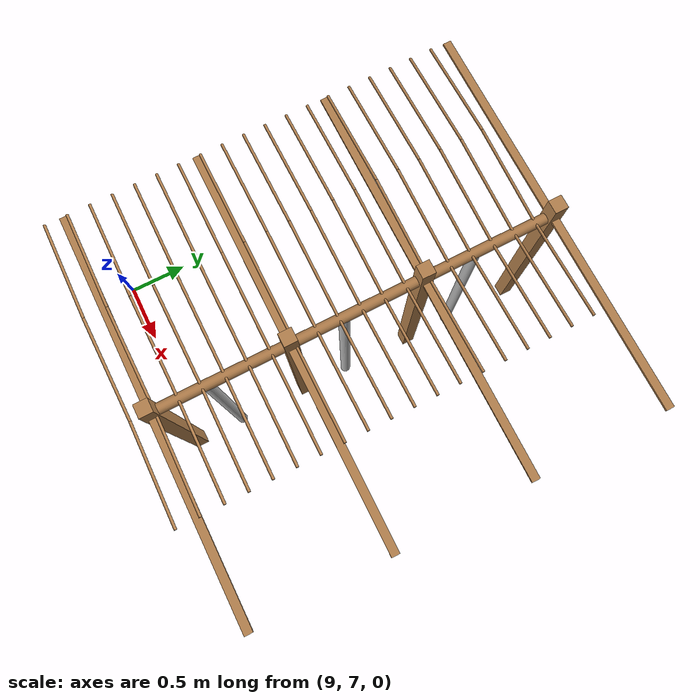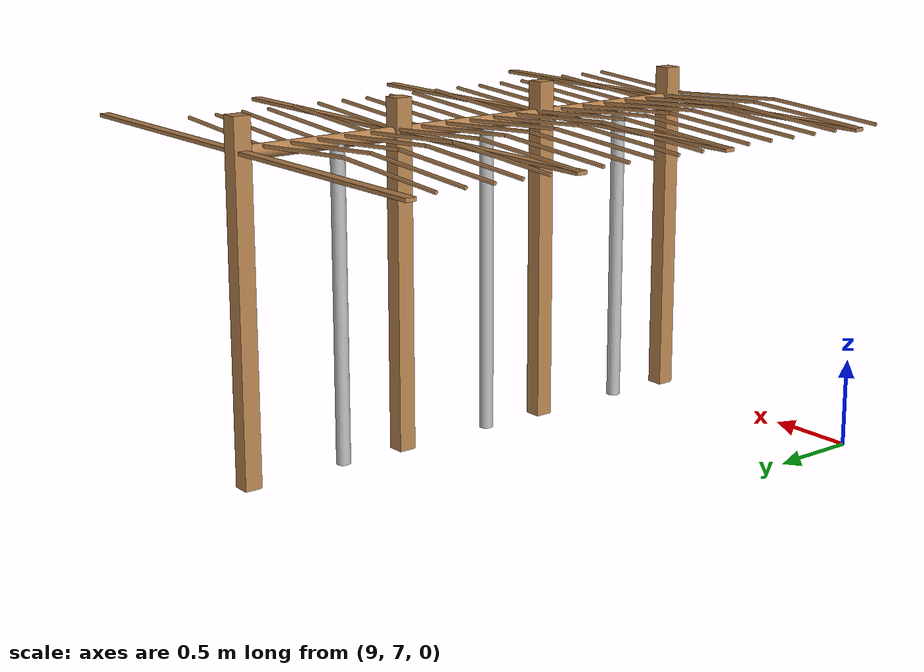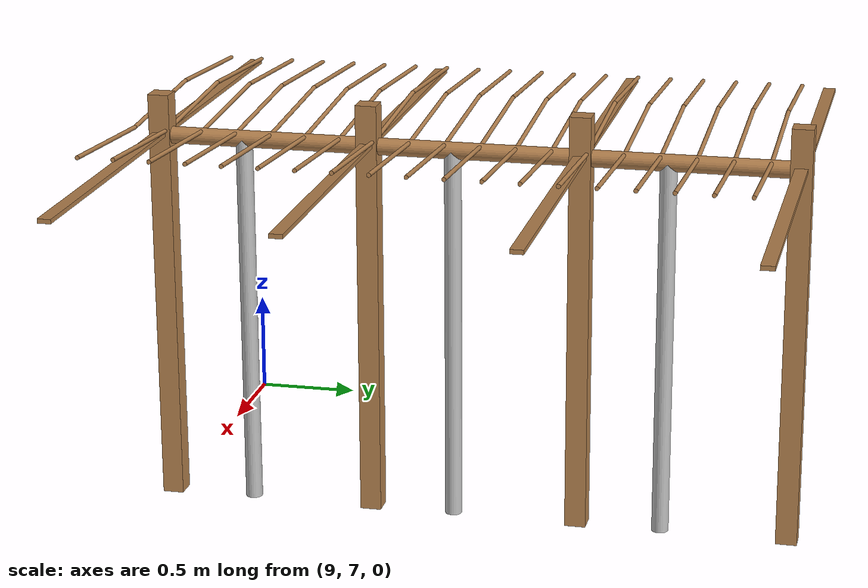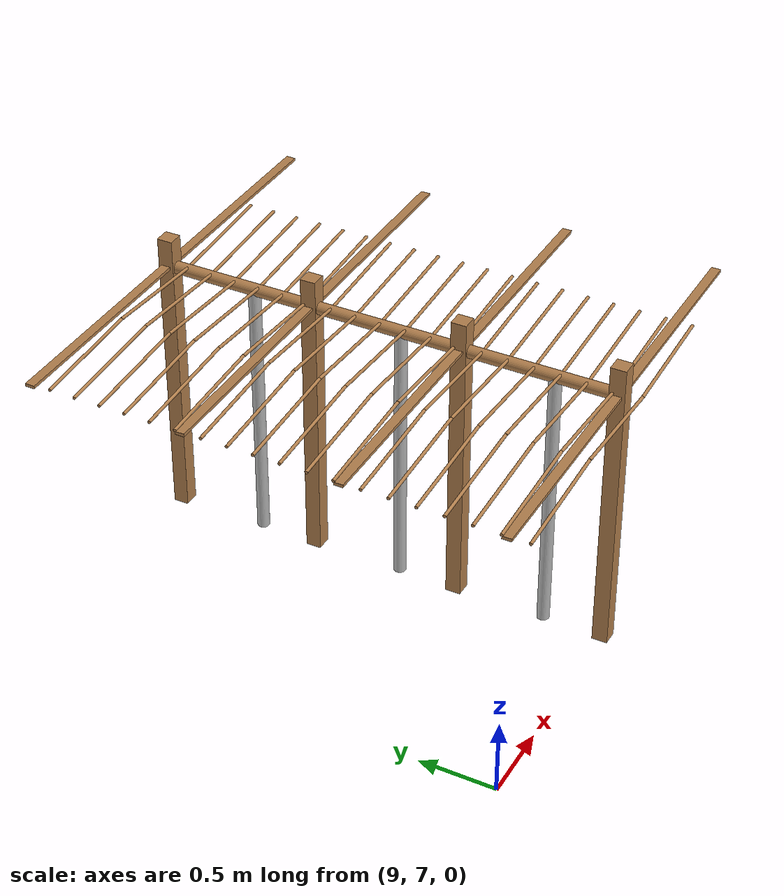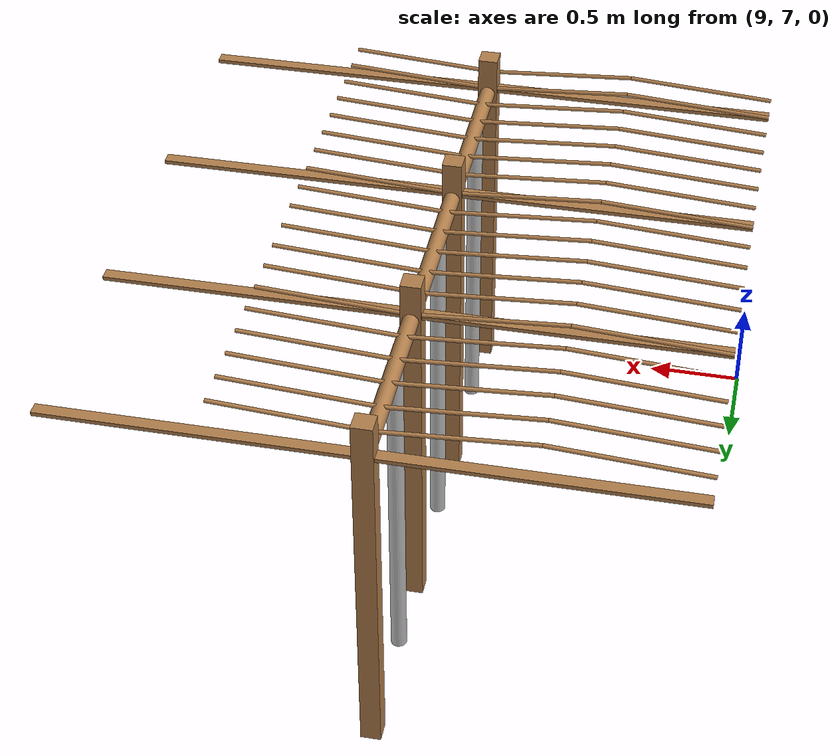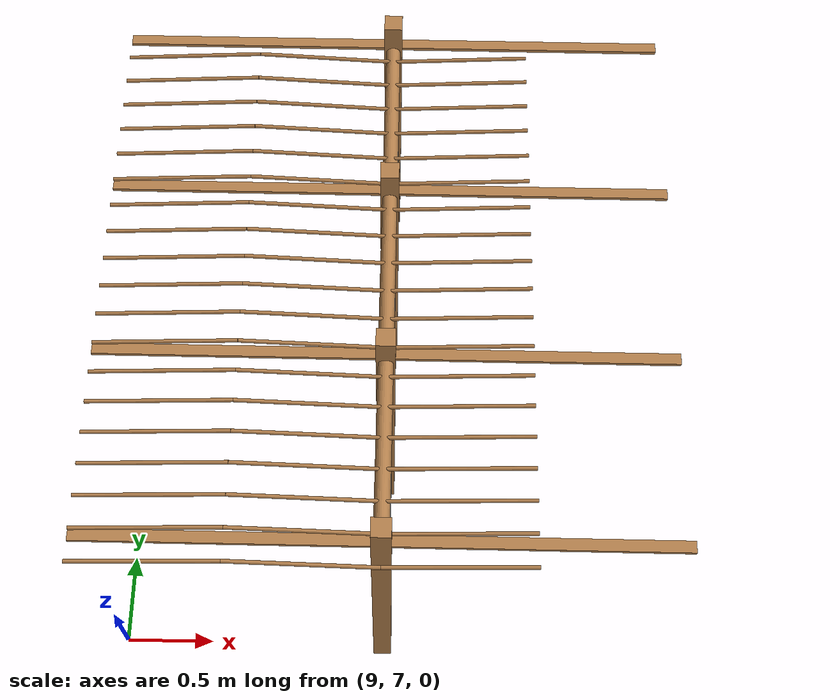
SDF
<sdf version="1.4">
 <model name="pergola">
  <include><name>post_84</name><pose>10.5 7.0 0 0 0 0</pose><uri>model://post</uri></include>
  <include><name>post_85</name><pose>10.5 8.0 0 0 0 0</pose><uri>model://post</uri></include>
  <include><name>post_86</name><pose>10.5 9.0 0 0 0 0</pose><uri>model://post</uri></include>
  <include><name>post_87</name><pose>10.5 10.0 0 0 0 0</pose><uri>model://post</uri></include>
  <link name="beam_73">
   <pose>9.75 7.0 1.81 0 0 0</pose>
   <collision name="collision"><geometry><box><size>1.5 0.06 0.02</size></box></geometry></collision>
   <visual name="visual">
    <geometry><box><size>1.5 0.06 0.02</size></box></geometry>
    <material><script><name>Gazebo/Wood</name></script></material>
   </visual>
   <inertial>
    <mass>5</mass>
    <inertia>
     <ixx>0.0016666666666666668</ixx>
     <ixy>0.0</ixy>
     <ixz>0.0</ixz>
     <iyy>0.9390000000000001</iyy>
     <iyz>0.0</iyz>
     <izz>0.9376666666666665</izz>
    </inertia>
   </inertial>
  </link>
  <link name="beam_74">
   <pose>9.75 8.0 1.81 0 0 0</pose>
   <collision name="collision"><geometry><box><size>1.5 0.06 0.02</size></box></geometry></collision>
   <visual name="visual">
    <geometry><box><size>1.5 0.06 0.02</size></box></geometry>
    <material><script><name>Gazebo/Wood</name></script></material>
   </visual>
   <inertial>
    <mass>5</mass>
    <inertia>
     <ixx>0.0016666666666666668</ixx>
     <ixy>0.0</ixy>
     <ixz>0.0</ixz>
     <iyy>0.9390000000000001</iyy>
     <iyz>0.0</iyz>
     <izz>0.9376666666666665</izz>
    </inertia>
   </inertial>
  </link>
  <link name="beam_75">
   <pose>9.75 9.0 1.81 0 0 0</pose>
   <collision name="collision"><geometry><box><size>1.5 0.06 0.02</size></box></geometry></collision>
   <visual name="visual">
    <geometry><box><size>1.5 0.06 0.02</size></box></geometry>
    <material><script><name>Gazebo/Wood</name></script></material>
   </visual>
   <inertial>
    <mass>5</mass>
    <inertia>
     <ixx>0.0016666666666666668</ixx>
     <ixy>0.0</ixy>
     <ixz>0.0</ixz>
     <iyy>0.9390000000000001</iyy>
     <iyz>0.0</iyz>
     <izz>0.9376666666666665</izz>
    </inertia>
   </inertial>
  </link>
  <link name="beam_76">
   <pose>9.75 10.0 1.81 0 0 0</pose>
   <collision name="collision"><geometry><box><size>1.5 0.06 0.02</size></box></geometry></collision>
   <visual name="visual">
    <geometry><box><size>1.5 0.06 0.02</size></box></geometry>
    <material><script><name>Gazebo/Wood</name></script></material>
   </visual>
   <inertial>
    <mass>5</mass>
    <inertia>
     <ixx>0.0016666666666666668</ixx>
     <ixy>0.0</ixy>
     <ixz>0.0</ixz>
     <iyy>0.9390000000000001</iyy>
     <iyz>0.0</iyz>
     <izz>0.9376666666666665</izz>
    </inertia>
   </inertial>
  </link>
  <link name="beam_84">
   <pose>11.25 7.0 1.81 0 0 0</pose>
   <collision name="collision"><geometry><box><size>1.5 0.06 0.02</size></box></geometry></collision>
   <visual name="visual">
    <geometry><box><size>1.5 0.06 0.02</size></box></geometry>
    <material><script><name>Gazebo/Wood</name></script></material>
   </visual>
   <inertial>
    <mass>5</mass>
    <inertia>
     <ixx>0.0016666666666666668</ixx>
     <ixy>0.0</ixy>
     <ixz>0.0</ixz>
     <iyy>0.9390000000000001</iyy>
     <iyz>0.0</iyz>
     <izz>0.9376666666666665</izz>
    </inertia>
   </inertial>
  </link>
  <link name="beam_85">
   <pose>11.25 8.0 1.81 0 0 0</pose>
   <collision name="collision"><geometry><box><size>1.5 0.06 0.02</size></box></geometry></collision>
   <visual name="visual">
    <geometry><box><size>1.5 0.06 0.02</size></box></geometry>
    <material><script><name>Gazebo/Wood</name></script></material>
   </visual>
   <inertial>
    <mass>5</mass>
    <inertia>
     <ixx>0.0016666666666666668</ixx>
     <ixy>0.0</ixy>
     <ixz>0.0</ixz>
     <iyy>0.9390000000000001</iyy>
     <iyz>0.0</iyz>
     <izz>0.9376666666666665</izz>
    </inertia>
   </inertial>
  </link>
  <link name="beam_86">
   <pose>11.25 9.0 1.81 0 0 0</pose>
   <collision name="collision"><geometry><box><size>1.5 0.06 0.02</size></box></geometry></collision>
   <visual name="visual">
    <geometry><box><size>1.5 0.06 0.02</size></box></geometry>
    <material><script><name>Gazebo/Wood</name></script></material>
   </visual>
   <inertial>
    <mass>5</mass>
    <inertia>
     <ixx>0.0016666666666666668</ixx>
     <ixy>0.0</ixy>
     <ixz>0.0</ixz>
     <iyy>0.9390000000000001</iyy>
     <iyz>0.0</iyz>
     <izz>0.9376666666666665</izz>
    </inertia>
   </inertial>
  </link>
  <link name="beam_87">
   <pose>11.25 10.0 1.81 0 0 0</pose>
   <collision name="collision"><geometry><box><size>1.5 0.06 0.02</size></box></geometry></collision>
   <visual name="visual">
    <geometry><box><size>1.5 0.06 0.02</size></box></geometry>
    <material><script><name>Gazebo/Wood</name></script></material>
   </visual>
   <inertial>
    <mass>5</mass>
    <inertia>
     <ixx>0.0016666666666666668</ixx>
     <ixy>0.0</ixy>
     <ixz>0.0</ixz>
     <iyy>0.9390000000000001</iyy>
     <iyz>0.0</iyz>
     <izz>0.9376666666666665</izz>
    </inertia>
   </inertial>
  </link>
  <include><name>tree_77</name><pose>10.5 7.4 0 0 0 0</pose><uri>model://tree_trunk</uri></include>
  <include><name>tree_78</name><pose>10.5 8.4 0 0 0 0</pose><uri>model://tree_trunk</uri></include>
  <include><name>tree_79</name><pose>10.5 9.4 0 0 0 0</pose><uri>model://tree_trunk</uri></include>
  <link name="baseBranch_77">
   <pose>10.5 7.5 1.8 1.5707963267948966 0 0</pose>
   <collision name="collision">
    <geometry><cylinder><radius>0.04</radius><length>0.94</length></cylinder></geometry>
   </collision>
   <visual name="visual">
    <geometry><cylinder><radius>0.04</radius><length>0.94</length></cylinder></geometry>
    <material><script><name>Gazebo/WoodFloor</name></script></material>
   </visual>
   <inertial>
    <mass>10</mass>
    <inertia>
     <ixx>0.7403333333333334</ixx>
     <ixy>0.0</ixy>
     <ixz>0.0</ixz>
     <iyy>0.7403333333333334</iyy>
     <iyz>0.0</iyz>
     <izz>0.008</izz>
    </inertia>
   </inertial>
  </link>
  <link name="baseBranch_78">
   <pose>10.5 8.5 1.8 1.5707963267948966 0 0</pose>
   <collision name="collision">
    <geometry><cylinder><radius>0.04</radius><length>0.94</length></cylinder></geometry>
   </collision>
   <visual name="visual">
    <geometry><cylinder><radius>0.04</radius><length>0.94</length></cylinder></geometry>
    <material><script><name>Gazebo/WoodFloor</name></script></material>
   </visual>
   <inertial>
    <mass>10</mass>
    <inertia>
     <ixx>0.7403333333333334</ixx>
     <ixy>0.0</ixy>
     <ixz>0.0</ixz>
     <iyy>0.7403333333333334</iyy>
     <iyz>0.0</iyz>
     <izz>0.008</izz>
    </inertia>
   </inertial>
  </link>
  <link name="baseBranch_79">
   <pose>10.5 9.5 1.8 1.5707963267948966 0 0</pose>
   <collision name="collision">
    <geometry><cylinder><radius>0.04</radius><length>0.94</length></cylinder></geometry>
   </collision>
   <visual name="visual">
    <geometry><cylinder><radius>0.04</radius><length>0.94</length></cylinder></geometry>
    <material><script><name>Gazebo/WoodFloor</name></script></material>
   </visual>
   <inertial>
    <mass>10</mass>
    <inertia>
     <ixx>0.7403333333333334</ixx>
     <ixy>0.0</ixy>
     <ixz>0.0</ixz>
     <iyy>0.7403333333333334</iyy>
     <iyz>0.0</iyz>
     <izz>0.008</izz>
    </inertia>
   </inertial>
  </link>
  <link name="vine_802">
   <pose>9.375 6.863333333333333 1.85 0 1.5042281630190728 0</pose>
   <collision name="collision">
    <geometry><cylinder><radius>0.01</radius><length>0.7516648189186453</length></cylinder></geometry>
   </collision>
   <visual name="visual">
    <geometry><cylinder><radius>0.01</radius><length>0.7516648189186453</length></cylinder></geometry>
    <material><script><name>Gazebo/WoodFloor</name></script></material>
   </visual>
   <inertial>
    <mass>5</mass>
    <inertia>
     <ixx>0.23554166666666657</ixx>
     <ixy>0.0</ixy>
     <ixz>0.0</ixz>
     <iyy>0.23554166666666657</iyy>
     <iyz>0.0</iyz>
     <izz>0.00025</izz>
    </inertia>
   </inertial>
  </link>
  <link name="vine_803">
   <pose>10.125 6.863333333333333 1.85 0 -1.5042281630190728 0</pose>
   <collision name="collision">
    <geometry><cylinder><radius>0.01</radius><length>0.7516648189186453</length></cylinder></geometry>
   </collision>
   <visual name="visual">
    <geometry><cylinder><radius>0.01</radius><length>0.7516648189186453</length></cylinder></geometry>
    <material><script><name>Gazebo/WoodFloor</name></script></material>
   </visual>
   <inertial>
    <mass>5</mass>
    <inertia>
     <ixx>0.23554166666666657</ixx>
     <ixy>0.0</ixy>
     <ixz>0.0</ixz>
     <iyy>0.23554166666666657</iyy>
     <iyz>0.0</iyz>
     <izz>0.00025</izz>
    </inertia>
   </inertial>
  </link>
  <link name="vine_804">
   <pose>9.375 7.03 1.85 0 1.5042281630190728 0</pose>
   <collision name="collision">
    <geometry><cylinder><radius>0.01</radius><length>0.7516648189186453</length></cylinder></geometry>
   </collision>
   <visual name="visual">
    <geometry><cylinder><radius>0.01</radius><length>0.7516648189186453</length></cylinder></geometry>
    <material><script><name>Gazebo/WoodFloor</name></script></material>
   </visual>
   <inertial>
    <mass>5</mass>
    <inertia>
     <ixx>0.23554166666666657</ixx>
     <ixy>0.0</ixy>
     <ixz>0.0</ixz>
     <iyy>0.23554166666666657</iyy>
     <iyz>0.0</iyz>
     <izz>0.00025</izz>
    </inertia>
   </inertial>
  </link>
  <link name="vine_805">
   <pose>10.125 7.03 1.85 0 -1.5042281630190728 0</pose>
   <collision name="collision">
    <geometry><cylinder><radius>0.01</radius><length>0.7516648189186453</length></cylinder></geometry>
   </collision>
   <visual name="visual">
    <geometry><cylinder><radius>0.01</radius><length>0.7516648189186453</length></cylinder></geometry>
    <material><script><name>Gazebo/WoodFloor</name></script></material>
   </visual>
   <inertial>
    <mass>5</mass>
    <inertia>
     <ixx>0.23554166666666657</ixx>
     <ixy>0.0</ixy>
     <ixz>0.0</ixz>
     <iyy>0.23554166666666657</iyy>
     <iyz>0.0</iyz>
     <izz>0.00025</izz>
    </inertia>
   </inertial>
  </link>
  <link name="vine_806">
   <pose>9.375 7.196666666666666 1.85 0 1.5042281630190728 0</pose>
   <collision name="collision">
    <geometry><cylinder><radius>0.01</radius><length>0.7516648189186453</length></cylinder></geometry>
   </collision>
   <visual name="visual">
    <geometry><cylinder><radius>0.01</radius><length>0.7516648189186453</length></cylinder></geometry>
    <material><script><name>Gazebo/WoodFloor</name></script></material>
   </visual>
   <inertial>
    <mass>5</mass>
    <inertia>
     <ixx>0.23554166666666657</ixx>
     <ixy>0.0</ixy>
     <ixz>0.0</ixz>
     <iyy>0.23554166666666657</iyy>
     <iyz>0.0</iyz>
     <izz>0.00025</izz>
    </inertia>
   </inertial>
  </link>
  <link name="vine_807">
   <pose>10.125 7.196666666666666 1.85 0 -1.5042281630190728 0</pose>
   <collision name="collision">
    <geometry><cylinder><radius>0.01</radius><length>0.7516648189186453</length></cylinder></geometry>
   </collision>
   <visual name="visual">
    <geometry><cylinder><radius>0.01</radius><length>0.7516648189186453</length></cylinder></geometry>
    <material><script><name>Gazebo/WoodFloor</name></script></material>
   </visual>
   <inertial>
    <mass>5</mass>
    <inertia>
     <ixx>0.23554166666666657</ixx>
     <ixy>0.0</ixy>
     <ixz>0.0</ixz>
     <iyy>0.23554166666666657</iyy>
     <iyz>0.0</iyz>
     <izz>0.00025</izz>
    </inertia>
   </inertial>
  </link>
  <link name="vine_808">
   <pose>9.375 7.363333333333333 1.85 0 1.5042281630190728 0</pose>
   <collision name="collision">
    <geometry><cylinder><radius>0.01</radius><length>0.7516648189186453</length></cylinder></geometry>
   </collision>
   <visual name="visual">
    <geometry><cylinder><radius>0.01</radius><length>0.7516648189186453</length></cylinder></geometry>
    <material><script><name>Gazebo/WoodFloor</name></script></material>
   </visual>
   <inertial>
    <mass>5</mass>
    <inertia>
     <ixx>0.23554166666666657</ixx>
     <ixy>0.0</ixy>
     <ixz>0.0</ixz>
     <iyy>0.23554166666666657</iyy>
     <iyz>0.0</iyz>
     <izz>0.00025</izz>
    </inertia>
   </inertial>
  </link>
  <link name="vine_809">
   <pose>10.125 7.363333333333333 1.85 0 -1.5042281630190728 0</pose>
   <collision name="collision">
    <geometry><cylinder><radius>0.01</radius><length>0.7516648189186453</length></cylinder></geometry>
   </collision>
   <visual name="visual">
    <geometry><cylinder><radius>0.01</radius><length>0.7516648189186453</length></cylinder></geometry>
    <material><script><name>Gazebo/WoodFloor</name></script></material>
   </visual>
   <inertial>
    <mass>5</mass>
    <inertia>
     <ixx>0.23554166666666657</ixx>
     <ixy>0.0</ixy>
     <ixz>0.0</ixz>
     <iyy>0.23554166666666657</iyy>
     <iyz>0.0</iyz>
     <izz>0.00025</izz>
    </inertia>
   </inertial>
  </link>
  <link name="vine_810">
   <pose>9.375 7.53 1.85 0 1.5042281630190728 0</pose>
   <collision name="collision">
    <geometry><cylinder><radius>0.01</radius><length>0.7516648189186453</length></cylinder></geometry>
   </collision>
   <visual name="visual">
    <geometry><cylinder><radius>0.01</radius><length>0.7516648189186453</length></cylinder></geometry>
    <material><script><name>Gazebo/WoodFloor</name></script></material>
   </visual>
   <inertial>
    <mass>5</mass>
    <inertia>
     <ixx>0.23554166666666657</ixx>
     <ixy>0.0</ixy>
     <ixz>0.0</ixz>
     <iyy>0.23554166666666657</iyy>
     <iyz>0.0</iyz>
     <izz>0.00025</izz>
    </inertia>
   </inertial>
  </link>
  <link name="vine_811">
   <pose>10.125 7.53 1.85 0 -1.5042281630190728 0</pose>
   <collision name="collision">
    <geometry><cylinder><radius>0.01</radius><length>0.7516648189186453</length></cylinder></geometry>
   </collision>
   <visual name="visual">
    <geometry><cylinder><radius>0.01</radius><length>0.7516648189186453</length></cylinder></geometry>
    <material><script><name>Gazebo/WoodFloor</name></script></material>
   </visual>
   <inertial>
    <mass>5</mass>
    <inertia>
     <ixx>0.23554166666666657</ixx>
     <ixy>0.0</ixy>
     <ixz>0.0</ixz>
     <iyy>0.23554166666666657</iyy>
     <iyz>0.0</iyz>
     <izz>0.00025</izz>
    </inertia>
   </inertial>
  </link>
  <link name="vine_812">
   <pose>9.375 7.696666666666666 1.85 0 1.5042281630190728 0</pose>
   <collision name="collision">
    <geometry><cylinder><radius>0.01</radius><length>0.7516648189186453</length></cylinder></geometry>
   </collision>
   <visual name="visual">
    <geometry><cylinder><radius>0.01</radius><length>0.7516648189186453</length></cylinder></geometry>
    <material><script><name>Gazebo/WoodFloor</name></script></material>
   </visual>
   <inertial>
    <mass>5</mass>
    <inertia>
     <ixx>0.23554166666666657</ixx>
     <ixy>0.0</ixy>
     <ixz>0.0</ixz>
     <iyy>0.23554166666666657</iyy>
     <iyz>0.0</iyz>
     <izz>0.00025</izz>
    </inertia>
   </inertial>
  </link>
  <link name="vine_813">
   <pose>10.125 7.696666666666666 1.85 0 -1.5042281630190728 0</pose>
   <collision name="collision">
    <geometry><cylinder><radius>0.01</radius><length>0.7516648189186453</length></cylinder></geometry>
   </collision>
   <visual name="visual">
    <geometry><cylinder><radius>0.01</radius><length>0.7516648189186453</length></cylinder></geometry>
    <material><script><name>Gazebo/WoodFloor</name></script></material>
   </visual>
   <inertial>
    <mass>5</mass>
    <inertia>
     <ixx>0.23554166666666657</ixx>
     <ixy>0.0</ixy>
     <ixz>0.0</ixz>
     <iyy>0.23554166666666657</iyy>
     <iyz>0.0</iyz>
     <izz>0.00025</izz>
    </inertia>
   </inertial>
  </link>
  <link name="vine_814">
   <pose>9.375 7.863333333333333 1.85 0 1.5042281630190728 0</pose>
   <collision name="collision">
    <geometry><cylinder><radius>0.01</radius><length>0.7516648189186453</length></cylinder></geometry>
   </collision>
   <visual name="visual">
    <geometry><cylinder><radius>0.01</radius><length>0.7516648189186453</length></cylinder></geometry>
    <material><script><name>Gazebo/WoodFloor</name></script></material>
   </visual>
   <inertial>
    <mass>5</mass>
    <inertia>
     <ixx>0.23554166666666657</ixx>
     <ixy>0.0</ixy>
     <ixz>0.0</ixz>
     <iyy>0.23554166666666657</iyy>
     <iyz>0.0</iyz>
     <izz>0.00025</izz>
    </inertia>
   </inertial>
  </link>
  <link name="vine_815">
   <pose>10.125 7.863333333333333 1.85 0 -1.5042281630190728 0</pose>
   <collision name="collision">
    <geometry><cylinder><radius>0.01</radius><length>0.7516648189186453</length></cylinder></geometry>
   </collision>
   <visual name="visual">
    <geometry><cylinder><radius>0.01</radius><length>0.7516648189186453</length></cylinder></geometry>
    <material><script><name>Gazebo/WoodFloor</name></script></material>
   </visual>
   <inertial>
    <mass>5</mass>
    <inertia>
     <ixx>0.23554166666666657</ixx>
     <ixy>0.0</ixy>
     <ixz>0.0</ixz>
     <iyy>0.23554166666666657</iyy>
     <iyz>0.0</iyz>
     <izz>0.00025</izz>
    </inertia>
   </inertial>
  </link>
  <link name="vine_816">
   <pose>9.375 8.03 1.85 0 1.5042281630190728 0</pose>
   <collision name="collision">
    <geometry><cylinder><radius>0.01</radius><length>0.7516648189186453</length></cylinder></geometry>
   </collision>
   <visual name="visual">
    <geometry><cylinder><radius>0.01</radius><length>0.7516648189186453</length></cylinder></geometry>
    <material><script><name>Gazebo/WoodFloor</name></script></material>
   </visual>
   <inertial>
    <mass>5</mass>
    <inertia>
     <ixx>0.23554166666666657</ixx>
     <ixy>0.0</ixy>
     <ixz>0.0</ixz>
     <iyy>0.23554166666666657</iyy>
     <iyz>0.0</iyz>
     <izz>0.00025</izz>
    </inertia>
   </inertial>
  </link>
  <link name="vine_817">
   <pose>10.125 8.03 1.85 0 -1.5042281630190728 0</pose>
   <collision name="collision">
    <geometry><cylinder><radius>0.01</radius><length>0.7516648189186453</length></cylinder></geometry>
   </collision>
   <visual name="visual">
    <geometry><cylinder><radius>0.01</radius><length>0.7516648189186453</length></cylinder></geometry>
    <material><script><name>Gazebo/WoodFloor</name></script></material>
   </visual>
   <inertial>
    <mass>5</mass>
    <inertia>
     <ixx>0.23554166666666657</ixx>
     <ixy>0.0</ixy>
     <ixz>0.0</ixz>
     <iyy>0.23554166666666657</iyy>
     <iyz>0.0</iyz>
     <izz>0.00025</izz>
    </inertia>
   </inertial>
  </link>
  <link name="vine_818">
   <pose>9.375 8.196666666666665 1.85 0 1.5042281630190728 0</pose>
   <collision name="collision">
    <geometry><cylinder><radius>0.01</radius><length>0.7516648189186453</length></cylinder></geometry>
   </collision>
   <visual name="visual">
    <geometry><cylinder><radius>0.01</radius><length>0.7516648189186453</length></cylinder></geometry>
    <material><script><name>Gazebo/WoodFloor</name></script></material>
   </visual>
   <inertial>
    <mass>5</mass>
    <inertia>
     <ixx>0.23554166666666657</ixx>
     <ixy>0.0</ixy>
     <ixz>0.0</ixz>
     <iyy>0.23554166666666657</iyy>
     <iyz>0.0</iyz>
     <izz>0.00025</izz>
    </inertia>
   </inertial>
  </link>
  <link name="vine_819">
   <pose>10.125 8.196666666666665 1.85 0 -1.5042281630190728 0</pose>
   <collision name="collision">
    <geometry><cylinder><radius>0.01</radius><length>0.7516648189186453</length></cylinder></geometry>
   </collision>
   <visual name="visual">
    <geometry><cylinder><radius>0.01</radius><length>0.7516648189186453</length></cylinder></geometry>
    <material><script><name>Gazebo/WoodFloor</name></script></material>
   </visual>
   <inertial>
    <mass>5</mass>
    <inertia>
     <ixx>0.23554166666666657</ixx>
     <ixy>0.0</ixy>
     <ixz>0.0</ixz>
     <iyy>0.23554166666666657</iyy>
     <iyz>0.0</iyz>
     <izz>0.00025</izz>
    </inertia>
   </inertial>
  </link>
  <link name="vine_820">
   <pose>9.375 8.363333333333332 1.85 0 1.5042281630190728 0</pose>
   <collision name="collision">
    <geometry><cylinder><radius>0.01</radius><length>0.7516648189186453</length></cylinder></geometry>
   </collision>
   <visual name="visual">
    <geometry><cylinder><radius>0.01</radius><length>0.7516648189186453</length></cylinder></geometry>
    <material><script><name>Gazebo/WoodFloor</name></script></material>
   </visual>
   <inertial>
    <mass>5</mass>
    <inertia>
     <ixx>0.23554166666666657</ixx>
     <ixy>0.0</ixy>
     <ixz>0.0</ixz>
     <iyy>0.23554166666666657</iyy>
     <iyz>0.0</iyz>
     <izz>0.00025</izz>
    </inertia>
   </inertial>
  </link>
  <link name="vine_821">
   <pose>10.125 8.363333333333332 1.85 0 -1.5042281630190728 0</pose>
   <collision name="collision">
    <geometry><cylinder><radius>0.01</radius><length>0.7516648189186453</length></cylinder></geometry>
   </collision>
   <visual name="visual">
    <geometry><cylinder><radius>0.01</radius><length>0.7516648189186453</length></cylinder></geometry>
    <material><script><name>Gazebo/WoodFloor</name></script></material>
   </visual>
   <inertial>
    <mass>5</mass>
    <inertia>
     <ixx>0.23554166666666657</ixx>
     <ixy>0.0</ixy>
     <ixz>0.0</ixz>
     <iyy>0.23554166666666657</iyy>
     <iyz>0.0</iyz>
     <izz>0.00025</izz>
    </inertia>
   </inertial>
  </link>
  <link name="vine_822">
   <pose>9.375 8.53 1.85 0 1.5042281630190728 0</pose>
   <collision name="collision">
    <geometry><cylinder><radius>0.01</radius><length>0.7516648189186453</length></cylinder></geometry>
   </collision>
   <visual name="visual">
    <geometry><cylinder><radius>0.01</radius><length>0.7516648189186453</length></cylinder></geometry>
    <material><script><name>Gazebo/WoodFloor</name></script></material>
   </visual>
   <inertial>
    <mass>5</mass>
    <inertia>
     <ixx>0.23554166666666657</ixx>
     <ixy>0.0</ixy>
     <ixz>0.0</ixz>
     <iyy>0.23554166666666657</iyy>
     <iyz>0.0</iyz>
     <izz>0.00025</izz>
    </inertia>
   </inertial>
  </link>
  <link name="vine_823">
   <pose>10.125 8.53 1.85 0 -1.5042281630190728 0</pose>
   <collision name="collision">
    <geometry><cylinder><radius>0.01</radius><length>0.7516648189186453</length></cylinder></geometry>
   </collision>
   <visual name="visual">
    <geometry><cylinder><radius>0.01</radius><length>0.7516648189186453</length></cylinder></geometry>
    <material><script><name>Gazebo/WoodFloor</name></script></material>
   </visual>
   <inertial>
    <mass>5</mass>
    <inertia>
     <ixx>0.23554166666666657</ixx>
     <ixy>0.0</ixy>
     <ixz>0.0</ixz>
     <iyy>0.23554166666666657</iyy>
     <iyz>0.0</iyz>
     <izz>0.00025</izz>
    </inertia>
   </inertial>
  </link>
  <link name="vine_824">
   <pose>9.375 8.696666666666665 1.85 0 1.5042281630190728 0</pose>
   <collision name="collision">
    <geometry><cylinder><radius>0.01</radius><length>0.7516648189186453</length></cylinder></geometry>
   </collision>
   <visual name="visual">
    <geometry><cylinder><radius>0.01</radius><length>0.7516648189186453</length></cylinder></geometry>
    <material><script><name>Gazebo/WoodFloor</name></script></material>
   </visual>
   <inertial>
    <mass>5</mass>
    <inertia>
     <ixx>0.23554166666666657</ixx>
     <ixy>0.0</ixy>
     <ixz>0.0</ixz>
     <iyy>0.23554166666666657</iyy>
     <iyz>0.0</iyz>
     <izz>0.00025</izz>
    </inertia>
   </inertial>
  </link>
  <link name="vine_825">
   <pose>10.125 8.696666666666665 1.85 0 -1.5042281630190728 0</pose>
   <collision name="collision">
    <geometry><cylinder><radius>0.01</radius><length>0.7516648189186453</length></cylinder></geometry>
   </collision>
   <visual name="visual">
    <geometry><cylinder><radius>0.01</radius><length>0.7516648189186453</length></cylinder></geometry>
    <material><script><name>Gazebo/WoodFloor</name></script></material>
   </visual>
   <inertial>
    <mass>5</mass>
    <inertia>
     <ixx>0.23554166666666657</ixx>
     <ixy>0.0</ixy>
     <ixz>0.0</ixz>
     <iyy>0.23554166666666657</iyy>
     <iyz>0.0</iyz>
     <izz>0.00025</izz>
    </inertia>
   </inertial>
  </link>
  <link name="vine_826">
   <pose>9.375 8.863333333333332 1.85 0 1.5042281630190728 0</pose>
   <collision name="collision">
    <geometry><cylinder><radius>0.01</radius><length>0.7516648189186453</length></cylinder></geometry>
   </collision>
   <visual name="visual">
    <geometry><cylinder><radius>0.01</radius><length>0.7516648189186453</length></cylinder></geometry>
    <material><script><name>Gazebo/WoodFloor</name></script></material>
   </visual>
   <inertial>
    <mass>5</mass>
    <inertia>
     <ixx>0.23554166666666657</ixx>
     <ixy>0.0</ixy>
     <ixz>0.0</ixz>
     <iyy>0.23554166666666657</iyy>
     <iyz>0.0</iyz>
     <izz>0.00025</izz>
    </inertia>
   </inertial>
  </link>
  <link name="vine_827">
   <pose>10.125 8.863333333333332 1.85 0 -1.5042281630190728 0</pose>
   <collision name="collision">
    <geometry><cylinder><radius>0.01</radius><length>0.7516648189186453</length></cylinder></geometry>
   </collision>
   <visual name="visual">
    <geometry><cylinder><radius>0.01</radius><length>0.7516648189186453</length></cylinder></geometry>
    <material><script><name>Gazebo/WoodFloor</name></script></material>
   </visual>
   <inertial>
    <mass>5</mass>
    <inertia>
     <ixx>0.23554166666666657</ixx>
     <ixy>0.0</ixy>
     <ixz>0.0</ixz>
     <iyy>0.23554166666666657</iyy>
     <iyz>0.0</iyz>
     <izz>0.00025</izz>
    </inertia>
   </inertial>
  </link>
  <link name="vine_828">
   <pose>9.375 9.03 1.85 0 1.5042281630190728 0</pose>
   <collision name="collision">
    <geometry><cylinder><radius>0.01</radius><length>0.7516648189186453</length></cylinder></geometry>
   </collision>
   <visual name="visual">
    <geometry><cylinder><radius>0.01</radius><length>0.7516648189186453</length></cylinder></geometry>
    <material><script><name>Gazebo/WoodFloor</name></script></material>
   </visual>
   <inertial>
    <mass>5</mass>
    <inertia>
     <ixx>0.23554166666666657</ixx>
     <ixy>0.0</ixy>
     <ixz>0.0</ixz>
     <iyy>0.23554166666666657</iyy>
     <iyz>0.0</iyz>
     <izz>0.00025</izz>
    </inertia>
   </inertial>
  </link>
  <link name="vine_829">
   <pose>10.125 9.03 1.85 0 -1.5042281630190728 0</pose>
   <collision name="collision">
    <geometry><cylinder><radius>0.01</radius><length>0.7516648189186453</length></cylinder></geometry>
   </collision>
   <visual name="visual">
    <geometry><cylinder><radius>0.01</radius><length>0.7516648189186453</length></cylinder></geometry>
    <material><script><name>Gazebo/WoodFloor</name></script></material>
   </visual>
   <inertial>
    <mass>5</mass>
    <inertia>
     <ixx>0.23554166666666657</ixx>
     <ixy>0.0</ixy>
     <ixz>0.0</ixz>
     <iyy>0.23554166666666657</iyy>
     <iyz>0.0</iyz>
     <izz>0.00025</izz>
    </inertia>
   </inertial>
  </link>
  <link name="vine_830">
   <pose>9.375 9.196666666666665 1.85 0 1.5042281630190728 0</pose>
   <collision name="collision">
    <geometry><cylinder><radius>0.01</radius><length>0.7516648189186453</length></cylinder></geometry>
   </collision>
   <visual name="visual">
    <geometry><cylinder><radius>0.01</radius><length>0.7516648189186453</length></cylinder></geometry>
    <material><script><name>Gazebo/WoodFloor</name></script></material>
   </visual>
   <inertial>
    <mass>5</mass>
    <inertia>
     <ixx>0.23554166666666657</ixx>
     <ixy>0.0</ixy>
     <ixz>0.0</ixz>
     <iyy>0.23554166666666657</iyy>
     <iyz>0.0</iyz>
     <izz>0.00025</izz>
    </inertia>
   </inertial>
  </link>
  <link name="vine_831">
   <pose>10.125 9.196666666666665 1.85 0 -1.5042281630190728 0</pose>
   <collision name="collision">
    <geometry><cylinder><radius>0.01</radius><length>0.7516648189186453</length></cylinder></geometry>
   </collision>
   <visual name="visual">
    <geometry><cylinder><radius>0.01</radius><length>0.7516648189186453</length></cylinder></geometry>
    <material><script><name>Gazebo/WoodFloor</name></script></material>
   </visual>
   <inertial>
    <mass>5</mass>
    <inertia>
     <ixx>0.23554166666666657</ixx>
     <ixy>0.0</ixy>
     <ixz>0.0</ixz>
     <iyy>0.23554166666666657</iyy>
     <iyz>0.0</iyz>
     <izz>0.00025</izz>
    </inertia>
   </inertial>
  </link>
  <link name="vine_832">
   <pose>9.375 9.363333333333332 1.85 0 1.5042281630190728 0</pose>
   <collision name="collision">
    <geometry><cylinder><radius>0.01</radius><length>0.7516648189186453</length></cylinder></geometry>
   </collision>
   <visual name="visual">
    <geometry><cylinder><radius>0.01</radius><length>0.7516648189186453</length></cylinder></geometry>
    <material><script><name>Gazebo/WoodFloor</name></script></material>
   </visual>
   <inertial>
    <mass>5</mass>
    <inertia>
     <ixx>0.23554166666666657</ixx>
     <ixy>0.0</ixy>
     <ixz>0.0</ixz>
     <iyy>0.23554166666666657</iyy>
     <iyz>0.0</iyz>
     <izz>0.00025</izz>
    </inertia>
   </inertial>
  </link>
  <link name="vine_833">
   <pose>10.125 9.363333333333332 1.85 0 -1.5042281630190728 0</pose>
   <collision name="collision">
    <geometry><cylinder><radius>0.01</radius><length>0.7516648189186453</length></cylinder></geometry>
   </collision>
   <visual name="visual">
    <geometry><cylinder><radius>0.01</radius><length>0.7516648189186453</length></cylinder></geometry>
    <material><script><name>Gazebo/WoodFloor</name></script></material>
   </visual>
   <inertial>
    <mass>5</mass>
    <inertia>
     <ixx>0.23554166666666657</ixx>
     <ixy>0.0</ixy>
     <ixz>0.0</ixz>
     <iyy>0.23554166666666657</iyy>
     <iyz>0.0</iyz>
     <izz>0.00025</izz>
    </inertia>
   </inertial>
  </link>
  <link name="vine_834">
   <pose>9.375 9.53 1.85 0 1.5042281630190728 0</pose>
   <collision name="collision">
    <geometry><cylinder><radius>0.01</radius><length>0.7516648189186453</length></cylinder></geometry>
   </collision>
   <visual name="visual">
    <geometry><cylinder><radius>0.01</radius><length>0.7516648189186453</length></cylinder></geometry>
    <material><script><name>Gazebo/WoodFloor</name></script></material>
   </visual>
   <inertial>
    <mass>5</mass>
    <inertia>
     <ixx>0.23554166666666657</ixx>
     <ixy>0.0</ixy>
     <ixz>0.0</ixz>
     <iyy>0.23554166666666657</iyy>
     <iyz>0.0</iyz>
     <izz>0.00025</izz>
    </inertia>
   </inertial>
  </link>
  <link name="vine_835">
   <pose>10.125 9.53 1.85 0 -1.5042281630190728 0</pose>
   <collision name="collision">
    <geometry><cylinder><radius>0.01</radius><length>0.7516648189186453</length></cylinder></geometry>
   </collision>
   <visual name="visual">
    <geometry><cylinder><radius>0.01</radius><length>0.7516648189186453</length></cylinder></geometry>
    <material><script><name>Gazebo/WoodFloor</name></script></material>
   </visual>
   <inertial>
    <mass>5</mass>
    <inertia>
     <ixx>0.23554166666666657</ixx>
     <ixy>0.0</ixy>
     <ixz>0.0</ixz>
     <iyy>0.23554166666666657</iyy>
     <iyz>0.0</iyz>
     <izz>0.00025</izz>
    </inertia>
   </inertial>
  </link>
  <link name="vine_836">
   <pose>9.375 9.696666666666665 1.85 0 1.5042281630190728 0</pose>
   <collision name="collision">
    <geometry><cylinder><radius>0.01</radius><length>0.7516648189186453</length></cylinder></geometry>
   </collision>
   <visual name="visual">
    <geometry><cylinder><radius>0.01</radius><length>0.7516648189186453</length></cylinder></geometry>
    <material><script><name>Gazebo/WoodFloor</name></script></material>
   </visual>
   <inertial>
    <mass>5</mass>
    <inertia>
     <ixx>0.23554166666666657</ixx>
     <ixy>0.0</ixy>
     <ixz>0.0</ixz>
     <iyy>0.23554166666666657</iyy>
     <iyz>0.0</iyz>
     <izz>0.00025</izz>
    </inertia>
   </inertial>
  </link>
  <link name="vine_837">
   <pose>10.125 9.696666666666665 1.85 0 -1.5042281630190728 0</pose>
   <collision name="collision">
    <geometry><cylinder><radius>0.01</radius><length>0.7516648189186453</length></cylinder></geometry>
   </collision>
   <visual name="visual">
    <geometry><cylinder><radius>0.01</radius><length>0.7516648189186453</length></cylinder></geometry>
    <material><script><name>Gazebo/WoodFloor</name></script></material>
   </visual>
   <inertial>
    <mass>5</mass>
    <inertia>
     <ixx>0.23554166666666657</ixx>
     <ixy>0.0</ixy>
     <ixz>0.0</ixz>
     <iyy>0.23554166666666657</iyy>
     <iyz>0.0</iyz>
     <izz>0.00025</izz>
    </inertia>
   </inertial>
  </link>
  <link name="vine_838">
   <pose>9.375 9.863333333333332 1.85 0 1.5042281630190728 0</pose>
   <collision name="collision">
    <geometry><cylinder><radius>0.01</radius><length>0.7516648189186453</length></cylinder></geometry>
   </collision>
   <visual name="visual">
    <geometry><cylinder><radius>0.01</radius><length>0.7516648189186453</length></cylinder></geometry>
    <material><script><name>Gazebo/WoodFloor</name></script></material>
   </visual>
   <inertial>
    <mass>5</mass>
    <inertia>
     <ixx>0.23554166666666657</ixx>
     <ixy>0.0</ixy>
     <ixz>0.0</ixz>
     <iyy>0.23554166666666657</iyy>
     <iyz>0.0</iyz>
     <izz>0.00025</izz>
    </inertia>
   </inertial>
  </link>
  <link name="vine_839">
   <pose>10.125 9.863333333333332 1.85 0 -1.5042281630190728 0</pose>
   <collision name="collision">
    <geometry><cylinder><radius>0.01</radius><length>0.7516648189186453</length></cylinder></geometry>
   </collision>
   <visual name="visual">
    <geometry><cylinder><radius>0.01</radius><length>0.7516648189186453</length></cylinder></geometry>
    <material><script><name>Gazebo/WoodFloor</name></script></material>
   </visual>
   <inertial>
    <mass>5</mass>
    <inertia>
     <ixx>0.23554166666666657</ixx>
     <ixy>0.0</ixy>
     <ixz>0.0</ixz>
     <iyy>0.23554166666666657</iyy>
     <iyz>0.0</iyz>
     <izz>0.00025</izz>
    </inertia>
   </inertial>
  </link>
  <link name="vine_922">
   <pose>10.875 6.863333333333333 1.85 0 1.5042281630190728 0</pose>
   <collision name="collision">
    <geometry><cylinder><radius>0.01</radius><length>0.7516648189186453</length></cylinder></geometry>
   </collision>
   <visual name="visual">
    <geometry><cylinder><radius>0.01</radius><length>0.7516648189186453</length></cylinder></geometry>
    <material><script><name>Gazebo/WoodFloor</name></script></material>
   </visual>
   <inertial>
    <mass>5</mass>
    <inertia>
     <ixx>0.23554166666666657</ixx>
     <ixy>0.0</ixy>
     <ixz>0.0</ixz>
     <iyy>0.23554166666666657</iyy>
     <iyz>0.0</iyz>
     <izz>0.00025</izz>
    </inertia>
   </inertial>
  </link>
  <link name="vine_924">
   <pose>10.875 7.03 1.85 0 1.5042281630190728 0</pose>
   <collision name="collision">
    <geometry><cylinder><radius>0.01</radius><length>0.7516648189186453</length></cylinder></geometry>
   </collision>
   <visual name="visual">
    <geometry><cylinder><radius>0.01</radius><length>0.7516648189186453</length></cylinder></geometry>
    <material><script><name>Gazebo/WoodFloor</name></script></material>
   </visual>
   <inertial>
    <mass>5</mass>
    <inertia>
     <ixx>0.23554166666666657</ixx>
     <ixy>0.0</ixy>
     <ixz>0.0</ixz>
     <iyy>0.23554166666666657</iyy>
     <iyz>0.0</iyz>
     <izz>0.00025</izz>
    </inertia>
   </inertial>
  </link>
  <link name="vine_926">
   <pose>10.875 7.196666666666666 1.85 0 1.5042281630190728 0</pose>
   <collision name="collision">
    <geometry><cylinder><radius>0.01</radius><length>0.7516648189186453</length></cylinder></geometry>
   </collision>
   <visual name="visual">
    <geometry><cylinder><radius>0.01</radius><length>0.7516648189186453</length></cylinder></geometry>
    <material><script><name>Gazebo/WoodFloor</name></script></material>
   </visual>
   <inertial>
    <mass>5</mass>
    <inertia>
     <ixx>0.23554166666666657</ixx>
     <ixy>0.0</ixy>
     <ixz>0.0</ixz>
     <iyy>0.23554166666666657</iyy>
     <iyz>0.0</iyz>
     <izz>0.00025</izz>
    </inertia>
   </inertial>
  </link>
  <link name="vine_928">
   <pose>10.875 7.363333333333333 1.85 0 1.5042281630190728 0</pose>
   <collision name="collision">
    <geometry><cylinder><radius>0.01</radius><length>0.7516648189186453</length></cylinder></geometry>
   </collision>
   <visual name="visual">
    <geometry><cylinder><radius>0.01</radius><length>0.7516648189186453</length></cylinder></geometry>
    <material><script><name>Gazebo/WoodFloor</name></script></material>
   </visual>
   <inertial>
    <mass>5</mass>
    <inertia>
     <ixx>0.23554166666666657</ixx>
     <ixy>0.0</ixy>
     <ixz>0.0</ixz>
     <iyy>0.23554166666666657</iyy>
     <iyz>0.0</iyz>
     <izz>0.00025</izz>
    </inertia>
   </inertial>
  </link>
  <link name="vine_930">
   <pose>10.875 7.53 1.85 0 1.5042281630190728 0</pose>
   <collision name="collision">
    <geometry><cylinder><radius>0.01</radius><length>0.7516648189186453</length></cylinder></geometry>
   </collision>
   <visual name="visual">
    <geometry><cylinder><radius>0.01</radius><length>0.7516648189186453</length></cylinder></geometry>
    <material><script><name>Gazebo/WoodFloor</name></script></material>
   </visual>
   <inertial>
    <mass>5</mass>
    <inertia>
     <ixx>0.23554166666666657</ixx>
     <ixy>0.0</ixy>
     <ixz>0.0</ixz>
     <iyy>0.23554166666666657</iyy>
     <iyz>0.0</iyz>
     <izz>0.00025</izz>
    </inertia>
   </inertial>
  </link>
  <link name="vine_932">
   <pose>10.875 7.696666666666666 1.85 0 1.5042281630190728 0</pose>
   <collision name="collision">
    <geometry><cylinder><radius>0.01</radius><length>0.7516648189186453</length></cylinder></geometry>
   </collision>
   <visual name="visual">
    <geometry><cylinder><radius>0.01</radius><length>0.7516648189186453</length></cylinder></geometry>
    <material><script><name>Gazebo/WoodFloor</name></script></material>
   </visual>
   <inertial>
    <mass>5</mass>
    <inertia>
     <ixx>0.23554166666666657</ixx>
     <ixy>0.0</ixy>
     <ixz>0.0</ixz>
     <iyy>0.23554166666666657</iyy>
     <iyz>0.0</iyz>
     <izz>0.00025</izz>
    </inertia>
   </inertial>
  </link>
  <link name="vine_934">
   <pose>10.875 7.863333333333333 1.85 0 1.5042281630190728 0</pose>
   <collision name="collision">
    <geometry><cylinder><radius>0.01</radius><length>0.7516648189186453</length></cylinder></geometry>
   </collision>
   <visual name="visual">
    <geometry><cylinder><radius>0.01</radius><length>0.7516648189186453</length></cylinder></geometry>
    <material><script><name>Gazebo/WoodFloor</name></script></material>
   </visual>
   <inertial>
    <mass>5</mass>
    <inertia>
     <ixx>0.23554166666666657</ixx>
     <ixy>0.0</ixy>
     <ixz>0.0</ixz>
     <iyy>0.23554166666666657</iyy>
     <iyz>0.0</iyz>
     <izz>0.00025</izz>
    </inertia>
   </inertial>
  </link>
  <link name="vine_936">
   <pose>10.875 8.03 1.85 0 1.5042281630190728 0</pose>
   <collision name="collision">
    <geometry><cylinder><radius>0.01</radius><length>0.7516648189186453</length></cylinder></geometry>
   </collision>
   <visual name="visual">
    <geometry><cylinder><radius>0.01</radius><length>0.7516648189186453</length></cylinder></geometry>
    <material><script><name>Gazebo/WoodFloor</name></script></material>
   </visual>
   <inertial>
    <mass>5</mass>
    <inertia>
     <ixx>0.23554166666666657</ixx>
     <ixy>0.0</ixy>
     <ixz>0.0</ixz>
     <iyy>0.23554166666666657</iyy>
     <iyz>0.0</iyz>
     <izz>0.00025</izz>
    </inertia>
   </inertial>
  </link>
  <link name="vine_938">
   <pose>10.875 8.196666666666665 1.85 0 1.5042281630190728 0</pose>
   <collision name="collision">
    <geometry><cylinder><radius>0.01</radius><length>0.7516648189186453</length></cylinder></geometry>
   </collision>
   <visual name="visual">
    <geometry><cylinder><radius>0.01</radius><length>0.7516648189186453</length></cylinder></geometry>
    <material><script><name>Gazebo/WoodFloor</name></script></material>
   </visual>
   <inertial>
    <mass>5</mass>
    <inertia>
     <ixx>0.23554166666666657</ixx>
     <ixy>0.0</ixy>
     <ixz>0.0</ixz>
     <iyy>0.23554166666666657</iyy>
     <iyz>0.0</iyz>
     <izz>0.00025</izz>
    </inertia>
   </inertial>
  </link>
  <link name="vine_940">
   <pose>10.875 8.363333333333332 1.85 0 1.5042281630190728 0</pose>
   <collision name="collision">
    <geometry><cylinder><radius>0.01</radius><length>0.7516648189186453</length></cylinder></geometry>
   </collision>
   <visual name="visual">
    <geometry><cylinder><radius>0.01</radius><length>0.7516648189186453</length></cylinder></geometry>
    <material><script><name>Gazebo/WoodFloor</name></script></material>
   </visual>
   <inertial>
    <mass>5</mass>
    <inertia>
     <ixx>0.23554166666666657</ixx>
     <ixy>0.0</ixy>
     <ixz>0.0</ixz>
     <iyy>0.23554166666666657</iyy>
     <iyz>0.0</iyz>
     <izz>0.00025</izz>
    </inertia>
   </inertial>
  </link>
  <link name="vine_942">
   <pose>10.875 8.53 1.85 0 1.5042281630190728 0</pose>
   <collision name="collision">
    <geometry><cylinder><radius>0.01</radius><length>0.7516648189186453</length></cylinder></geometry>
   </collision>
   <visual name="visual">
    <geometry><cylinder><radius>0.01</radius><length>0.7516648189186453</length></cylinder></geometry>
    <material><script><name>Gazebo/WoodFloor</name></script></material>
   </visual>
   <inertial>
    <mass>5</mass>
    <inertia>
     <ixx>0.23554166666666657</ixx>
     <ixy>0.0</ixy>
     <ixz>0.0</ixz>
     <iyy>0.23554166666666657</iyy>
     <iyz>0.0</iyz>
     <izz>0.00025</izz>
    </inertia>
   </inertial>
  </link>
  <link name="vine_944">
   <pose>10.875 8.696666666666665 1.85 0 1.5042281630190728 0</pose>
   <collision name="collision">
    <geometry><cylinder><radius>0.01</radius><length>0.7516648189186453</length></cylinder></geometry>
   </collision>
   <visual name="visual">
    <geometry><cylinder><radius>0.01</radius><length>0.7516648189186453</length></cylinder></geometry>
    <material><script><name>Gazebo/WoodFloor</name></script></material>
   </visual>
   <inertial>
    <mass>5</mass>
    <inertia>
     <ixx>0.23554166666666657</ixx>
     <ixy>0.0</ixy>
     <ixz>0.0</ixz>
     <iyy>0.23554166666666657</iyy>
     <iyz>0.0</iyz>
     <izz>0.00025</izz>
    </inertia>
   </inertial>
  </link>
  <link name="vine_946">
   <pose>10.875 8.863333333333332 1.85 0 1.5042281630190728 0</pose>
   <collision name="collision">
    <geometry><cylinder><radius>0.01</radius><length>0.7516648189186453</length></cylinder></geometry>
   </collision>
   <visual name="visual">
    <geometry><cylinder><radius>0.01</radius><length>0.7516648189186453</length></cylinder></geometry>
    <material><script><name>Gazebo/WoodFloor</name></script></material>
   </visual>
   <inertial>
    <mass>5</mass>
    <inertia>
     <ixx>0.23554166666666657</ixx>
     <ixy>0.0</ixy>
     <ixz>0.0</ixz>
     <iyy>0.23554166666666657</iyy>
     <iyz>0.0</iyz>
     <izz>0.00025</izz>
    </inertia>
   </inertial>
  </link>
  <link name="vine_948">
   <pose>10.875 9.03 1.85 0 1.5042281630190728 0</pose>
   <collision name="collision">
    <geometry><cylinder><radius>0.01</radius><length>0.7516648189186453</length></cylinder></geometry>
   </collision>
   <visual name="visual">
    <geometry><cylinder><radius>0.01</radius><length>0.7516648189186453</length></cylinder></geometry>
    <material><script><name>Gazebo/WoodFloor</name></script></material>
   </visual>
   <inertial>
    <mass>5</mass>
    <inertia>
     <ixx>0.23554166666666657</ixx>
     <ixy>0.0</ixy>
     <ixz>0.0</ixz>
     <iyy>0.23554166666666657</iyy>
     <iyz>0.0</iyz>
     <izz>0.00025</izz>
    </inertia>
   </inertial>
  </link>
  <link name="vine_950">
   <pose>10.875 9.196666666666665 1.85 0 1.5042281630190728 0</pose>
   <collision name="collision">
    <geometry><cylinder><radius>0.01</radius><length>0.7516648189186453</length></cylinder></geometry>
   </collision>
   <visual name="visual">
    <geometry><cylinder><radius>0.01</radius><length>0.7516648189186453</length></cylinder></geometry>
    <material><script><name>Gazebo/WoodFloor</name></script></material>
   </visual>
   <inertial>
    <mass>5</mass>
    <inertia>
     <ixx>0.23554166666666657</ixx>
     <ixy>0.0</ixy>
     <ixz>0.0</ixz>
     <iyy>0.23554166666666657</iyy>
     <iyz>0.0</iyz>
     <izz>0.00025</izz>
    </inertia>
   </inertial>
  </link>
  <link name="vine_952">
   <pose>10.875 9.363333333333332 1.85 0 1.5042281630190728 0</pose>
   <collision name="collision">
    <geometry><cylinder><radius>0.01</radius><length>0.7516648189186453</length></cylinder></geometry>
   </collision>
   <visual name="visual">
    <geometry><cylinder><radius>0.01</radius><length>0.7516648189186453</length></cylinder></geometry>
    <material><script><name>Gazebo/WoodFloor</name></script></material>
   </visual>
   <inertial>
    <mass>5</mass>
    <inertia>
     <ixx>0.23554166666666657</ixx>
     <ixy>0.0</ixy>
     <ixz>0.0</ixz>
     <iyy>0.23554166666666657</iyy>
     <iyz>0.0</iyz>
     <izz>0.00025</izz>
    </inertia>
   </inertial>
  </link>
  <link name="vine_954">
   <pose>10.875 9.53 1.85 0 1.5042281630190728 0</pose>
   <collision name="collision">
    <geometry><cylinder><radius>0.01</radius><length>0.7516648189186453</length></cylinder></geometry>
   </collision>
   <visual name="visual">
    <geometry><cylinder><radius>0.01</radius><length>0.7516648189186453</length></cylinder></geometry>
    <material><script><name>Gazebo/WoodFloor</name></script></material>
   </visual>
   <inertial>
    <mass>5</mass>
    <inertia>
     <ixx>0.23554166666666657</ixx>
     <ixy>0.0</ixy>
     <ixz>0.0</ixz>
     <iyy>0.23554166666666657</iyy>
     <iyz>0.0</iyz>
     <izz>0.00025</izz>
    </inertia>
   </inertial>
  </link>
  <link name="vine_956">
   <pose>10.875 9.696666666666665 1.85 0 1.5042281630190728 0</pose>
   <collision name="collision">
    <geometry><cylinder><radius>0.01</radius><length>0.7516648189186453</length></cylinder></geometry>
   </collision>
   <visual name="visual">
    <geometry><cylinder><radius>0.01</radius><length>0.7516648189186453</length></cylinder></geometry>
    <material><script><name>Gazebo/WoodFloor</name></script></material>
   </visual>
   <inertial>
    <mass>5</mass>
    <inertia>
     <ixx>0.23554166666666657</ixx>
     <ixy>0.0</ixy>
     <ixz>0.0</ixz>
     <iyy>0.23554166666666657</iyy>
     <iyz>0.0</iyz>
     <izz>0.00025</izz>
    </inertia>
   </inertial>
  </link>
  <link name="vine_958">
   <pose>10.875 9.863333333333332 1.85 0 1.5042281630190728 0</pose>
   <collision name="collision">
    <geometry><cylinder><radius>0.01</radius><length>0.7516648189186453</length></cylinder></geometry>
   </collision>
   <visual name="visual">
    <geometry><cylinder><radius>0.01</radius><length>0.7516648189186453</length></cylinder></geometry>
    <material><script><name>Gazebo/WoodFloor</name></script></material>
   </visual>
   <inertial>
    <mass>5</mass>
    <inertia>
     <ixx>0.23554166666666657</ixx>
     <ixy>0.0</ixy>
     <ixz>0.0</ixz>
     <iyy>0.23554166666666657</iyy>
     <iyz>0.0</iyz>
     <izz>0.00025</izz>
    </inertia>
   </inertial>
  </link>
 </model>
</sdf>
